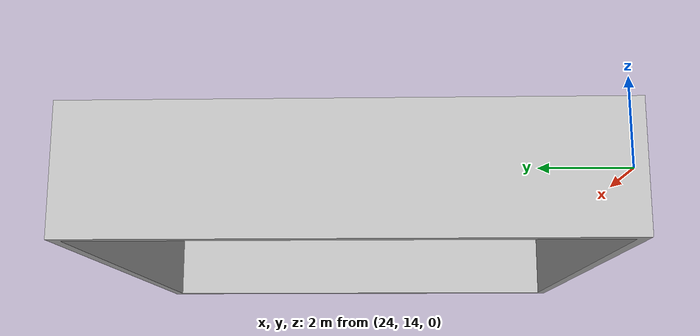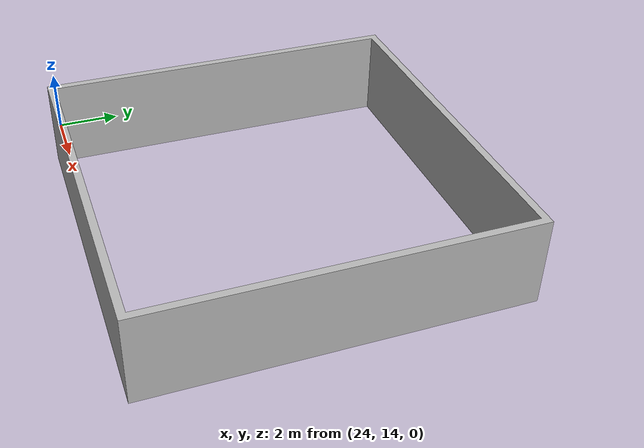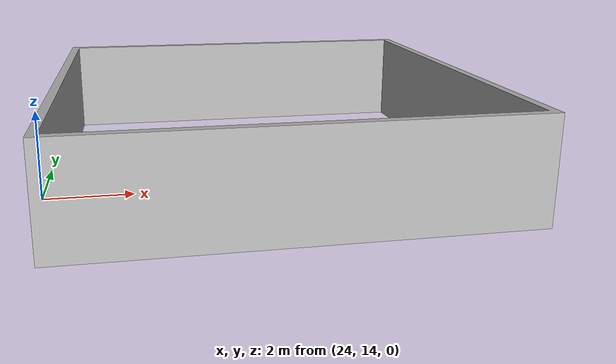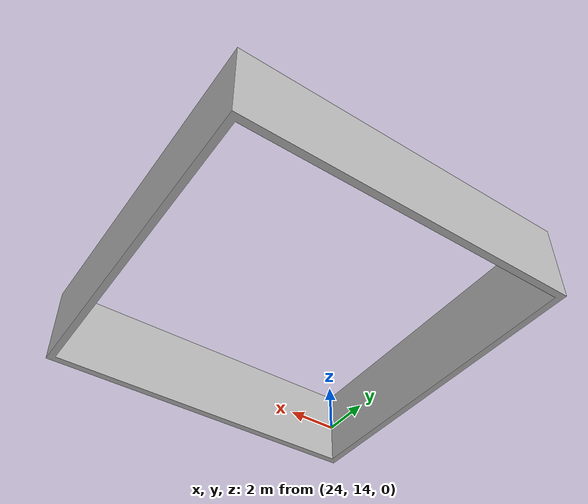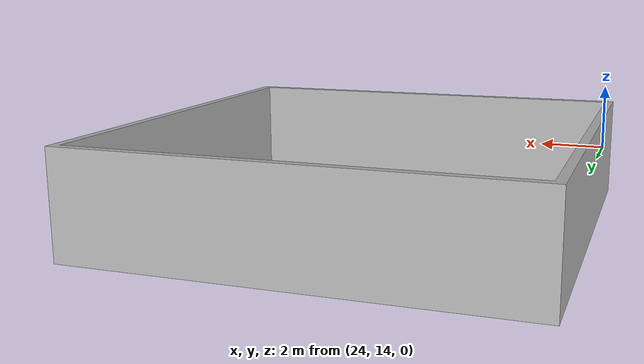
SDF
<?xml version='1.0'?>
<sdf version='1.4'>

  <model name='square'>
    <pose>30 20 0 0 0 0</pose>
    <static>true</static>
    <link name="wall">
      <visual name="wall_visual">
        <geometry>
          <mesh>
            <uri>model://square/meshes/square.dae</uri>
          </mesh>
        </geometry>
      </visual>
      <collision name="wall_collision">
        <geometry>
          <mesh>
            <uri>model://square/meshes/square.dae</uri>
          </mesh>
        </geometry>
      </collision>
    </link>
  </model>
</sdf>
